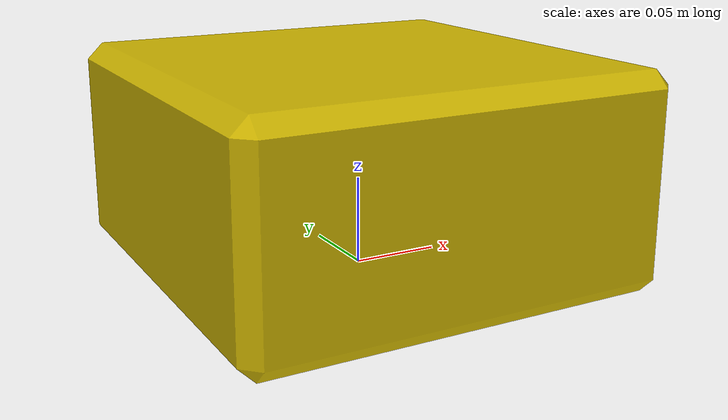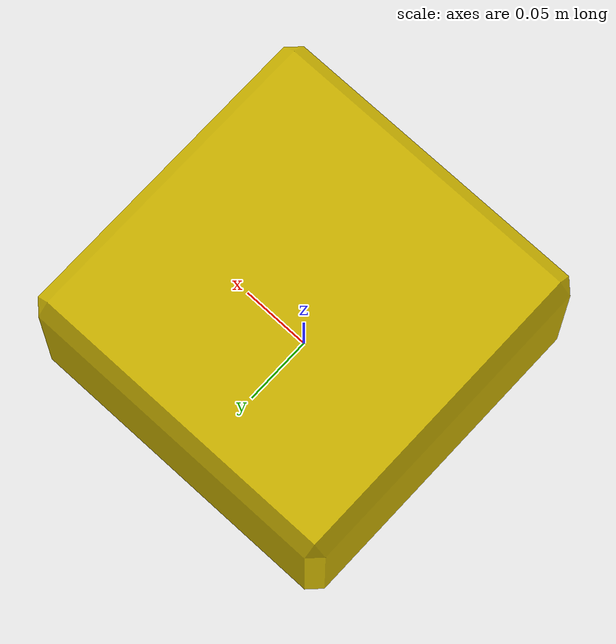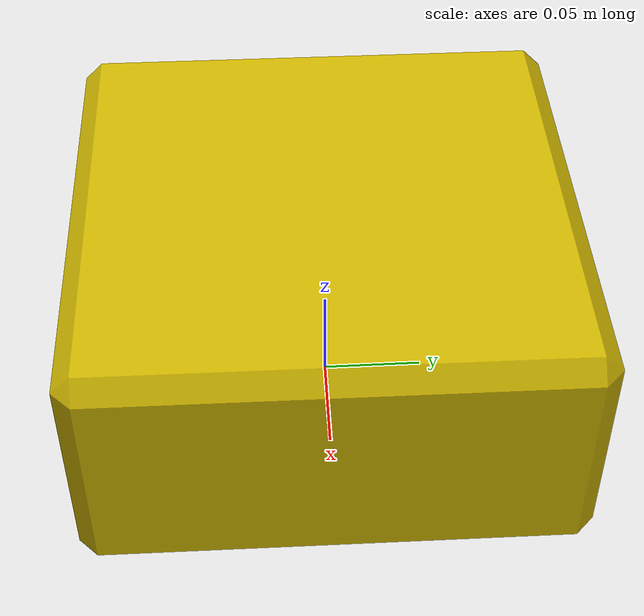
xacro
<?xml version="1.0" ?>
<robot name="Tetris_O" xmlns:xacro="http://www.ros.org/wiki/xacro">

<xacro:include filename="$(find Tetris_O_description)/urdf/materials.xacro" />

<material name="color">
  <color rgba="0.8 0.7 0.0 1.000"/>
</material>

<link name="base_link">
  <inertial>
    <origin xyz="0.0 0.0 0.02" rpy="0 0 0"/>
    <mass value="0.26769664"/>
    <inertia ixx="0.000176" iyy="0.000176" izz="0.000281" ixy="0.0" iyz="0.0" ixz="0.0"/>
  </inertial>

  <visual>
    <origin xyz="0 0 0.0" rpy="0 0 0"/>
    <geometry>
      <mesh filename="package://Tetris_O_description/meshes/base_link.stl" scale="0.003 0.003 0.003"/>
    </geometry>
    <material name="color"/>
  </visual>

  <collision>
    <origin xyz=".00 .00 .02" rpy="0 0 0"/>
    <geometry>
      <box size="0.08 0.08 0.04"/> <!-- Adjust the size of the first box -->
      <origin xyz="0.0 0.0 0.02" rpy="0 0 0"/> <!-- Offset the first box by (0.05, 0.05, 0.05) -->
    </geometry>
  </collision>
</link>

</robot>

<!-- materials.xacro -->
<robot name="Tetris_O" xmlns:xacro="http://www.ros.org/wiki/xacro" >

<material name="silver">
  <color rgba="0.700 0.700 0.700 1.000"/>
</material>

</robot>
